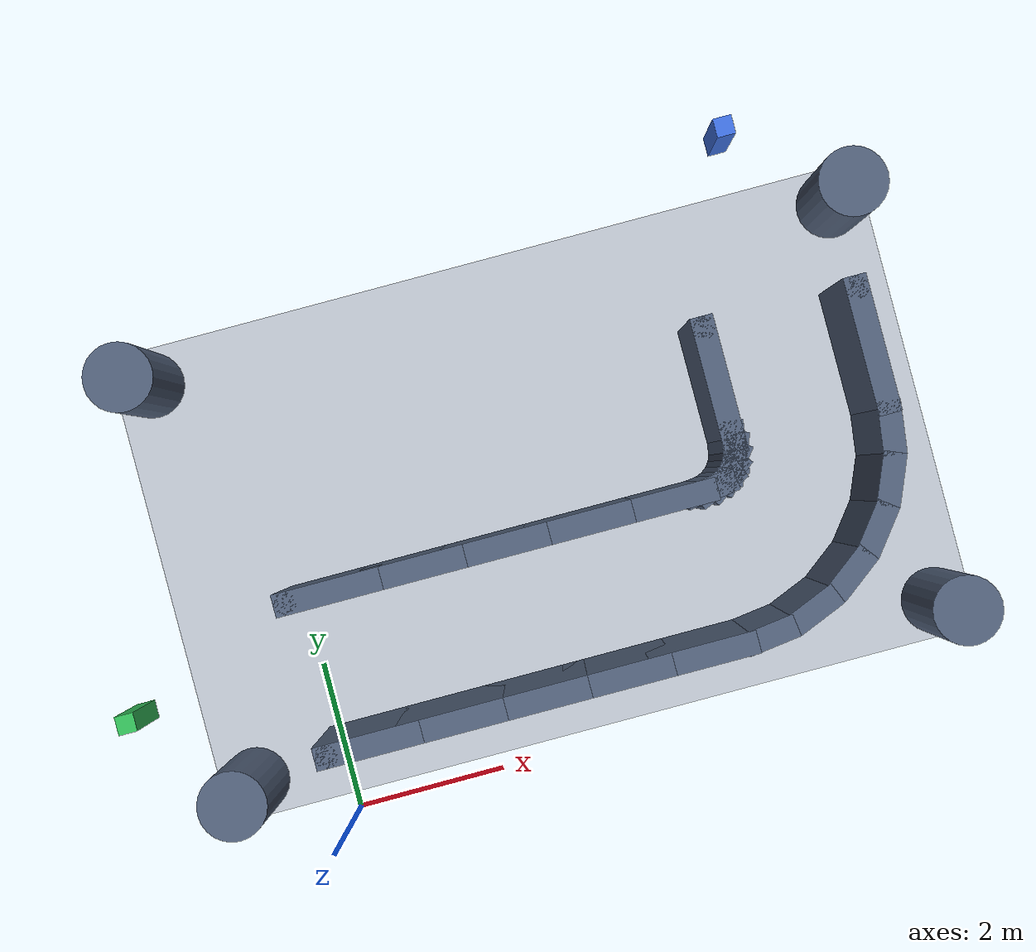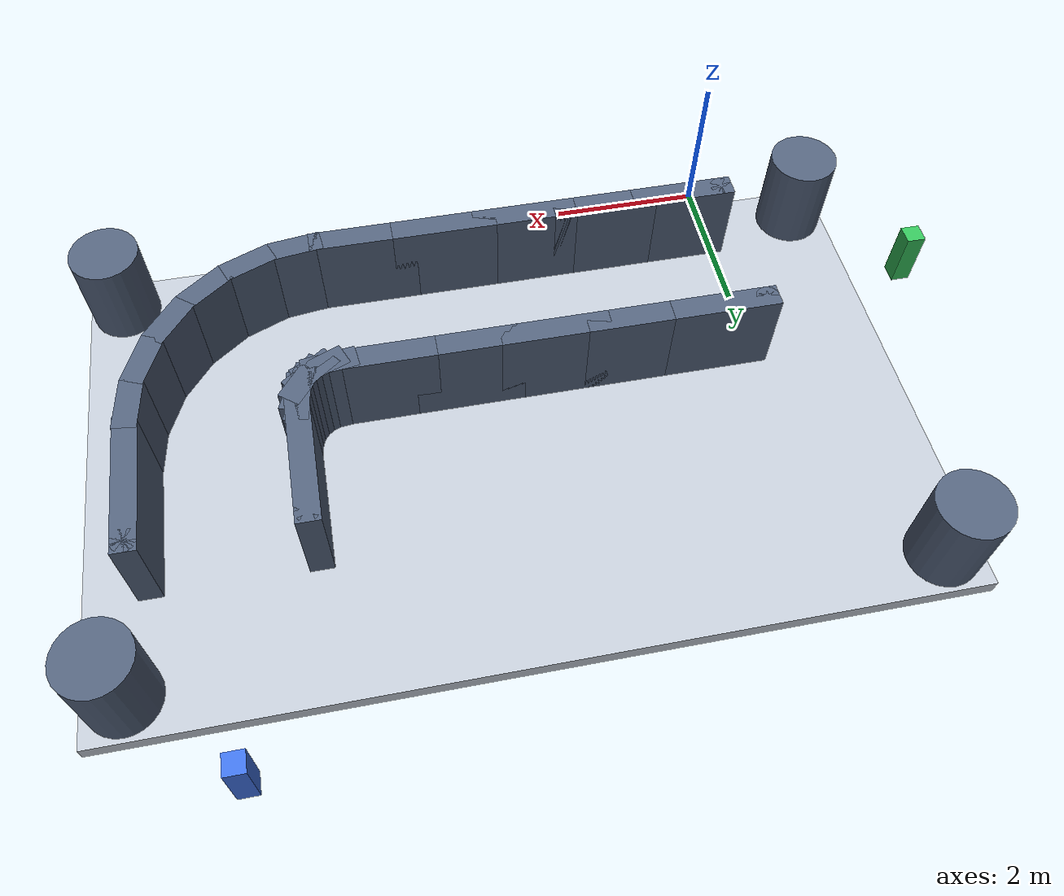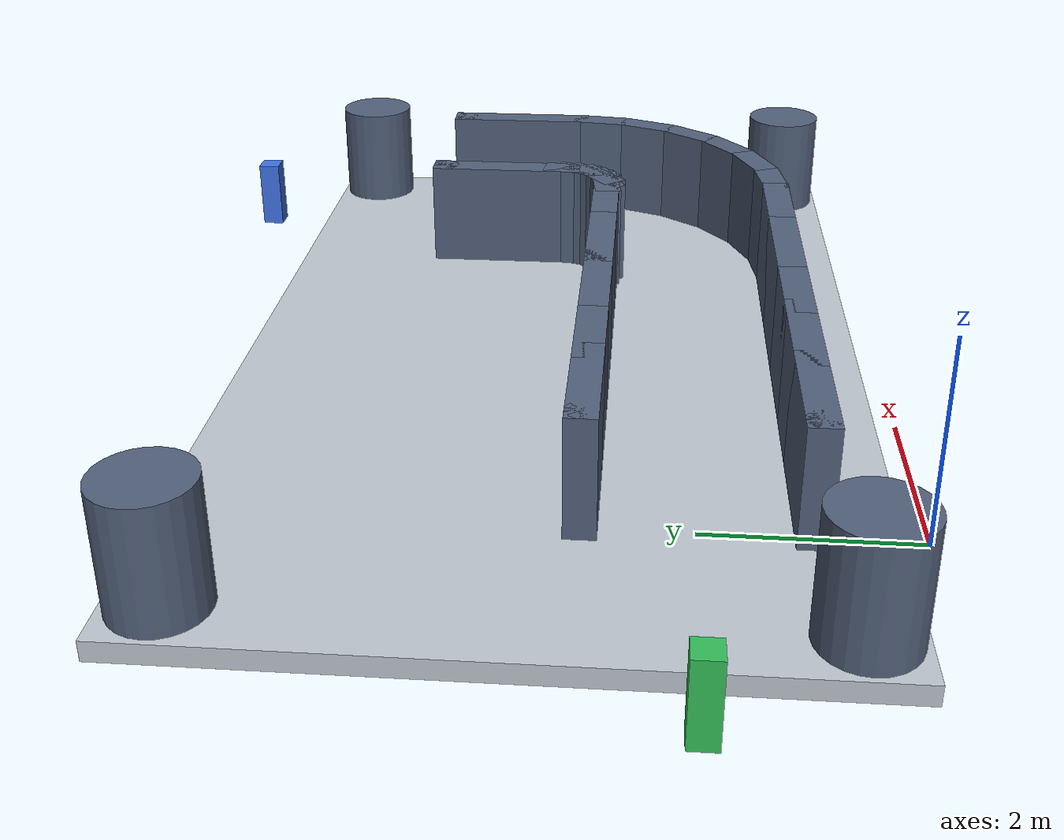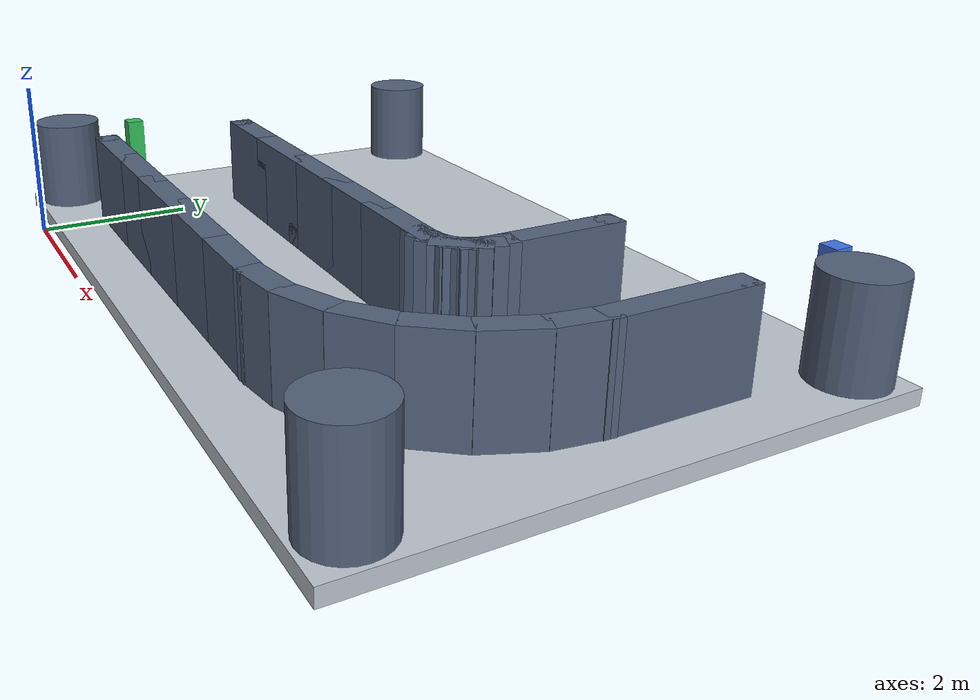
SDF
<?xml version="1.0"?>
<sdf version="1.6">
  <world name="shape">
    <light type="directional" name="sun">
      <pose>0 0 10 0 0 0</pose>
      <diffuse>0.8 0.8 0.8 1</diffuse>
      <specular>0.2 0.2 0.2 1</specular>
      <direction>-0.5 0.5 -1</direction>
    </light>
    <scene>
      <ambient>0.3 0.3 0.3 1</ambient>
      <background>0.7 0.7 0.7 1</background>
      <shadows>true</shadows>
    </scene>
    <model name="ground_plane">
      <static>true</static>
      <pose>3.500 3.500 -0.1 0 0 0</pose>
      <link name="link">
        <collision name="collision">
          <geometry><box><size>10.60 6.60 0.2</size></box></geometry>
          <surface>
            <friction><ode><mu>1</mu><mu2>1</mu2></ode></friction>
          </surface>
        </collision>
        <visual name="visual">
          <geometry><box><size>10.60 6.60 0.2</size></box></geometry>
          <material>
            <ambient>0.75 0.78 0.82 1</ambient>
            <diffuse>0.75 0.78 0.82 1</diffuse>
          </material>
        </visual>
      </link>
    </model>
    <!-- ============ 迷宫墙体（深蓝灰；box 墙段 + 圆柱圆头） ============ -->
    <model name="wall_00">
      <static>true</static>
      <pose>0.550 3.000 0.600 0 0 0.0000</pose>
      <link name="link">
        <collision name="collision">
          <geometry><box><size>1.400 0.300 1.2</size></box></geometry>
        </collision>
        <visual name="visual">
          <geometry><box><size>1.400 0.300 1.2</size></box></geometry>
          <material><ambient>0.32 0.38 0.48 1</ambient><diffuse>0.32 0.38 0.48 1</diffuse></material>
        </visual>
      </link>
    </model>
    <model name="wall_01">
      <static>true</static>
      <pose>0.550 1.000 0.600 0 0 0.0000</pose>
      <link name="link">
        <collision name="collision">
          <geometry><box><size>1.400 0.300 1.2</size></box></geometry>
        </collision>
        <visual name="visual">
          <geometry><box><size>1.400 0.300 1.2</size></box></geometry>
          <material><ambient>0.32 0.38 0.48 1</ambient><diffuse>0.32 0.38 0.48 1</diffuse></material>
        </visual>
      </link>
    </model>
    <model name="wall_02">
      <static>true</static>
      <pose>1.650 3.000 0.600 0 0 0.0000</pose>
      <link name="link">
        <collision name="collision">
          <geometry><box><size>1.400 0.300 1.2</size></box></geometry>
        </collision>
        <visual name="visual">
          <geometry><box><size>1.400 0.300 1.2</size></box></geometry>
          <material><ambient>0.32 0.38 0.48 1</ambient><diffuse>0.32 0.38 0.48 1</diffuse></material>
        </visual>
      </link>
    </model>
    <model name="wall_03">
      <static>true</static>
      <pose>1.650 1.000 0.600 0 0 0.0000</pose>
      <link name="link">
        <collision name="collision">
          <geometry><box><size>1.400 0.300 1.2</size></box></geometry>
        </collision>
        <visual name="visual">
          <geometry><box><size>1.400 0.300 1.2</size></box></geometry>
          <material><ambient>0.32 0.38 0.48 1</ambient><diffuse>0.32 0.38 0.48 1</diffuse></material>
        </visual>
      </link>
    </model>
    <model name="wall_04">
      <static>true</static>
      <pose>2.750 3.000 0.600 0 0 0.0000</pose>
      <link name="link">
        <collision name="collision">
          <geometry><box><size>1.400 0.300 1.2</size></box></geometry>
        </collision>
        <visual name="visual">
          <geometry><box><size>1.400 0.300 1.2</size></box></geometry>
          <material><ambient>0.32 0.38 0.48 1</ambient><diffuse>0.32 0.38 0.48 1</diffuse></material>
        </visual>
      </link>
    </model>
    <model name="wall_05">
      <static>true</static>
      <pose>2.750 1.000 0.600 0 0 0.0000</pose>
      <link name="link">
        <collision name="collision">
          <geometry><box><size>1.400 0.300 1.2</size></box></geometry>
        </collision>
        <visual name="visual">
          <geometry><box><size>1.400 0.300 1.2</size></box></geometry>
          <material><ambient>0.32 0.38 0.48 1</ambient><diffuse>0.32 0.38 0.48 1</diffuse></material>
        </visual>
      </link>
    </model>
    <model name="wall_06">
      <static>true</static>
      <pose>3.850 3.000 0.600 0 0 0.0000</pose>
      <link name="link">
        <collision name="collision">
          <geometry><box><size>1.400 0.300 1.2</size></box></geometry>
        </collision>
        <visual name="visual">
          <geometry><box><size>1.400 0.300 1.2</size></box></geometry>
          <material><ambient>0.32 0.38 0.48 1</ambient><diffuse>0.32 0.38 0.48 1</diffuse></material>
        </visual>
      </link>
    </model>
    <model name="wall_07">
      <static>true</static>
      <pose>3.850 1.000 0.600 0 0 0.0000</pose>
      <link name="link">
        <collision name="collision">
          <geometry><box><size>1.400 0.300 1.2</size></box></geometry>
        </collision>
        <visual name="visual">
          <geometry><box><size>1.400 0.300 1.2</size></box></geometry>
          <material><ambient>0.32 0.38 0.48 1</ambient><diffuse>0.32 0.38 0.48 1</diffuse></material>
        </visual>
      </link>
    </model>
    <model name="wall_08">
      <static>true</static>
      <pose>4.950 3.000 0.600 0 0 0.0000</pose>
      <link name="link">
        <collision name="collision">
          <geometry><box><size>1.400 0.300 1.2</size></box></geometry>
        </collision>
        <visual name="visual">
          <geometry><box><size>1.400 0.300 1.2</size></box></geometry>
          <material><ambient>0.32 0.38 0.48 1</ambient><diffuse>0.32 0.38 0.48 1</diffuse></material>
        </visual>
      </link>
    </model>
    <model name="wall_09">
      <static>true</static>
      <pose>4.950 1.000 0.600 0 0 0.0000</pose>
      <link name="link">
        <collision name="collision">
          <geometry><box><size>1.400 0.300 1.2</size></box></geometry>
        </collision>
        <visual name="visual">
          <geometry><box><size>1.400 0.300 1.2</size></box></geometry>
          <material><ambient>0.32 0.38 0.48 1</ambient><diffuse>0.32 0.38 0.48 1</diffuse></material>
        </visual>
      </link>
    </model>
    <model name="wall_10">
      <static>true</static>
      <pose>5.564 3.017 0.600 0 0 0.1309</pose>
      <link name="link">
        <collision name="collision">
          <geometry><box><size>0.692 0.300 1.2</size></box></geometry>
        </collision>
        <visual name="visual">
          <geometry><box><size>0.692 0.300 1.2</size></box></geometry>
          <material><ambient>0.32 0.38 0.48 1</ambient><diffuse>0.32 0.38 0.48 1</diffuse></material>
        </visual>
      </link>
    </model>
    <model name="wall_11">
      <static>true</static>
      <pose>5.825 1.034 0.600 0 0 0.1309</pose>
      <link name="link">
        <collision name="collision">
          <geometry><box><size>0.692 0.300 1.2</size></box></geometry>
        </collision>
        <visual name="visual">
          <geometry><box><size>0.692 0.300 1.2</size></box></geometry>
          <material><ambient>0.32 0.38 0.48 1</ambient><diffuse>0.32 0.38 0.48 1</diffuse></material>
        </visual>
      </link>
    </model>
    <model name="wall_12">
      <static>true</static>
      <pose>5.686 3.050 0.600 0 0 0.3927</pose>
      <link name="link">
        <collision name="collision">
          <geometry><box><size>0.692 0.300 1.2</size></box></geometry>
        </collision>
        <visual name="visual">
          <geometry><box><size>0.692 0.300 1.2</size></box></geometry>
          <material><ambient>0.32 0.38 0.48 1</ambient><diffuse>0.32 0.38 0.48 1</diffuse></material>
        </visual>
      </link>
    </model>
    <model name="wall_13">
      <static>true</static>
      <pose>6.452 1.202 0.600 0 0 0.3927</pose>
      <link name="link">
        <collision name="collision">
          <geometry><box><size>0.692 0.300 1.2</size></box></geometry>
        </collision>
        <visual name="visual">
          <geometry><box><size>0.692 0.300 1.2</size></box></geometry>
          <material><ambient>0.32 0.38 0.48 1</ambient><diffuse>0.32 0.38 0.48 1</diffuse></material>
        </visual>
      </link>
    </model>
    <model name="wall_14">
      <static>true</static>
      <pose>5.797 3.114 0.600 0 0 0.6545</pose>
      <link name="link">
        <collision name="collision">
          <geometry><box><size>0.692 0.300 1.2</size></box></geometry>
        </collision>
        <visual name="visual">
          <geometry><box><size>0.692 0.300 1.2</size></box></geometry>
          <material><ambient>0.32 0.38 0.48 1</ambient><diffuse>0.32 0.38 0.48 1</diffuse></material>
        </visual>
      </link>
    </model>
    <model name="wall_15">
      <static>true</static>
      <pose>7.014 1.527 0.600 0 0 0.6545</pose>
      <link name="link">
        <collision name="collision">
          <geometry><box><size>0.692 0.300 1.2</size></box></geometry>
        </collision>
        <visual name="visual">
          <geometry><box><size>0.692 0.300 1.2</size></box></geometry>
          <material><ambient>0.32 0.38 0.48 1</ambient><diffuse>0.32 0.38 0.48 1</diffuse></material>
        </visual>
      </link>
    </model>
    <model name="wall_16">
      <static>true</static>
      <pose>5.886 3.203 0.600 0 0 0.9163</pose>
      <link name="link">
        <collision name="collision">
          <geometry><box><size>0.692 0.300 1.2</size></box></geometry>
        </collision>
        <visual name="visual">
          <geometry><box><size>0.692 0.300 1.2</size></box></geometry>
          <material><ambient>0.32 0.38 0.48 1</ambient><diffuse>0.32 0.38 0.48 1</diffuse></material>
        </visual>
      </link>
    </model>
    <model name="wall_17">
      <static>true</static>
      <pose>7.473 1.986 0.600 0 0 0.9163</pose>
      <link name="link">
        <collision name="collision">
          <geometry><box><size>0.692 0.300 1.2</size></box></geometry>
        </collision>
        <visual name="visual">
          <geometry><box><size>0.692 0.300 1.2</size></box></geometry>
          <material><ambient>0.32 0.38 0.48 1</ambient><diffuse>0.32 0.38 0.48 1</diffuse></material>
        </visual>
      </link>
    </model>
    <model name="wall_18">
      <static>true</static>
      <pose>5.950 3.314 0.600 0 0 1.1781</pose>
      <link name="link">
        <collision name="collision">
          <geometry><box><size>0.692 0.300 1.2</size></box></geometry>
        </collision>
        <visual name="visual">
          <geometry><box><size>0.692 0.300 1.2</size></box></geometry>
          <material><ambient>0.32 0.38 0.48 1</ambient><diffuse>0.32 0.38 0.48 1</diffuse></material>
        </visual>
      </link>
    </model>
    <model name="wall_19">
      <static>true</static>
      <pose>7.798 2.548 0.600 0 0 1.1781</pose>
      <link name="link">
        <collision name="collision">
          <geometry><box><size>0.692 0.300 1.2</size></box></geometry>
        </collision>
        <visual name="visual">
          <geometry><box><size>0.692 0.300 1.2</size></box></geometry>
          <material><ambient>0.32 0.38 0.48 1</ambient><diffuse>0.32 0.38 0.48 1</diffuse></material>
        </visual>
      </link>
    </model>
    <model name="wall_20">
      <static>true</static>
      <pose>5.983 3.436 0.600 0 0 1.4399</pose>
      <link name="link">
        <collision name="collision">
          <geometry><box><size>0.692 0.300 1.2</size></box></geometry>
        </collision>
        <visual name="visual">
          <geometry><box><size>0.692 0.300 1.2</size></box></geometry>
          <material><ambient>0.32 0.38 0.48 1</ambient><diffuse>0.32 0.38 0.48 1</diffuse></material>
        </visual>
      </link>
    </model>
    <model name="wall_21">
      <static>true</static>
      <pose>7.966 3.175 0.600 0 0 1.4399</pose>
      <link name="link">
        <collision name="collision">
          <geometry><box><size>0.692 0.300 1.2</size></box></geometry>
        </collision>
        <visual name="visual">
          <geometry><box><size>0.692 0.300 1.2</size></box></geometry>
          <material><ambient>0.32 0.38 0.48 1</ambient><diffuse>0.32 0.38 0.48 1</diffuse></material>
        </visual>
      </link>
    </model>
    <model name="wall_22">
      <static>true</static>
      <pose>6.000 4.250 0.600 0 0 1.5708</pose>
      <link name="link">
        <collision name="collision">
          <geometry><box><size>1.800 0.300 1.2</size></box></geometry>
        </collision>
        <visual name="visual">
          <geometry><box><size>1.800 0.300 1.2</size></box></geometry>
          <material><ambient>0.32 0.38 0.48 1</ambient><diffuse>0.32 0.38 0.48 1</diffuse></material>
        </visual>
      </link>
    </model>
    <model name="wall_23">
      <static>true</static>
      <pose>8.000 4.250 0.600 0 0 1.5708</pose>
      <link name="link">
        <collision name="collision">
          <geometry><box><size>1.800 0.300 1.2</size></box></geometry>
        </collision>
        <visual name="visual">
          <geometry><box><size>1.800 0.300 1.2</size></box></geometry>
          <material><ambient>0.32 0.38 0.48 1</ambient><diffuse>0.32 0.38 0.48 1</diffuse></material>
        </visual>
      </link>
    </model>
    <model name="pillar_00">
      <static>true</static>
      <pose>0.000 3.000 0.600 0 0 0</pose>
      <link name="link">
        <collision name="collision">
          <geometry><cylinder><radius>0.150</radius><length>1.2</length></cylinder></geometry>
        </collision>
        <visual name="visual">
          <geometry><cylinder><radius>0.150</radius><length>1.2</length></cylinder></geometry>
          <material><ambient>0.32 0.38 0.48 1</ambient><diffuse>0.32 0.38 0.48 1</diffuse></material>
        </visual>
      </link>
    </model>
    <model name="pillar_01">
      <static>true</static>
      <pose>6.000 5.000 0.600 0 0 0</pose>
      <link name="link">
        <collision name="collision">
          <geometry><cylinder><radius>0.150</radius><length>1.2</length></cylinder></geometry>
        </collision>
        <visual name="visual">
          <geometry><cylinder><radius>0.150</radius><length>1.2</length></cylinder></geometry>
          <material><ambient>0.32 0.38 0.48 1</ambient><diffuse>0.32 0.38 0.48 1</diffuse></material>
        </visual>
      </link>
    </model>
    <model name="pillar_02">
      <static>true</static>
      <pose>0.000 1.000 0.600 0 0 0</pose>
      <link name="link">
        <collision name="collision">
          <geometry><cylinder><radius>0.150</radius><length>1.2</length></cylinder></geometry>
        </collision>
        <visual name="visual">
          <geometry><cylinder><radius>0.150</radius><length>1.2</length></cylinder></geometry>
          <material><ambient>0.32 0.38 0.48 1</ambient><diffuse>0.32 0.38 0.48 1</diffuse></material>
        </visual>
      </link>
    </model>
    <model name="pillar_03">
      <static>true</static>
      <pose>8.000 5.000 0.600 0 0 0</pose>
      <link name="link">
        <collision name="collision">
          <geometry><cylinder><radius>0.150</radius><length>1.2</length></cylinder></geometry>
        </collision>
        <visual name="visual">
          <geometry><cylinder><radius>0.150</radius><length>1.2</length></cylinder></geometry>
          <material><ambient>0.32 0.38 0.48 1</ambient><diffuse>0.32 0.38 0.48 1</diffuse></material>
        </visual>
      </link>
    </model>
    <model name="pillar_04">
      <static>true</static>
      <pose>-1.300 0.700 0.600 0 0 0</pose>
      <link name="link">
        <collision name="collision">
          <geometry><cylinder><radius>0.450</radius><length>1.2</length></cylinder></geometry>
        </collision>
        <visual name="visual">
          <geometry><cylinder><radius>0.450</radius><length>1.2</length></cylinder></geometry>
          <material><ambient>0.32 0.38 0.48 1</ambient><diffuse>0.32 0.38 0.48 1</diffuse></material>
        </visual>
      </link>
    </model>
    <model name="pillar_05">
      <static>true</static>
      <pose>-1.300 6.300 0.600 0 0 0</pose>
      <link name="link">
        <collision name="collision">
          <geometry><cylinder><radius>0.450</radius><length>1.2</length></cylinder></geometry>
        </collision>
        <visual name="visual">
          <geometry><cylinder><radius>0.450</radius><length>1.2</length></cylinder></geometry>
          <material><ambient>0.32 0.38 0.48 1</ambient><diffuse>0.32 0.38 0.48 1</diffuse></material>
        </visual>
      </link>
    </model>
    <model name="pillar_06">
      <static>true</static>
      <pose>8.300 0.700 0.600 0 0 0</pose>
      <link name="link">
        <collision name="collision">
          <geometry><cylinder><radius>0.450</radius><length>1.2</length></cylinder></geometry>
        </collision>
        <visual name="visual">
          <geometry><cylinder><radius>0.450</radius><length>1.2</length></cylinder></geometry>
          <material><ambient>0.32 0.38 0.48 1</ambient><diffuse>0.32 0.38 0.48 1</diffuse></material>
        </visual>
      </link>
    </model>
    <model name="pillar_07">
      <static>true</static>
      <pose>8.300 6.300 0.600 0 0 0</pose>
      <link name="link">
        <collision name="collision">
          <geometry><cylinder><radius>0.450</radius><length>1.2</length></cylinder></geometry>
        </collision>
        <visual name="visual">
          <geometry><cylinder><radius>0.450</radius><length>1.2</length></cylinder></geometry>
          <material><ambient>0.32 0.38 0.48 1</ambient><diffuse>0.32 0.38 0.48 1</diffuse></material>
        </visual>
      </link>
    </model>
    <!-- ============ 起终点标记柱 ============ -->
    <model name="marker_entry">
      <static>true</static>
      <pose>-2.500 2.000 0.4 0 0 0</pose>
      <link name="link">
        <collision name="collision">
          <geometry><box><size>0.25 0.25 0.8</size></box></geometry>
        </collision>
        <visual name="visual">
          <geometry><box><size>0.25 0.25 0.8</size></box></geometry>
          <material><ambient>0.2 0.75 0.35 1</ambient><diffuse>0.2 0.75 0.35 1</diffuse></material>
        </visual>
      </link>
    </model>
    <model name="marker_exit">
      <static>true</static>
      <pose>7.000 7.500 0.4 0 0 0</pose>
      <link name="link">
        <collision name="collision">
          <geometry><box><size>0.25 0.25 0.8</size></box></geometry>
        </collision>
        <visual name="visual">
          <geometry><box><size>0.25 0.25 0.8</size></box></geometry>
          <material><ambient>0.25 0.45 0.9 1</ambient><diffuse>0.25 0.45 0.9 1</diffuse></material>
        </visual>
      </link>
    </model>
  </world>
</sdf>
